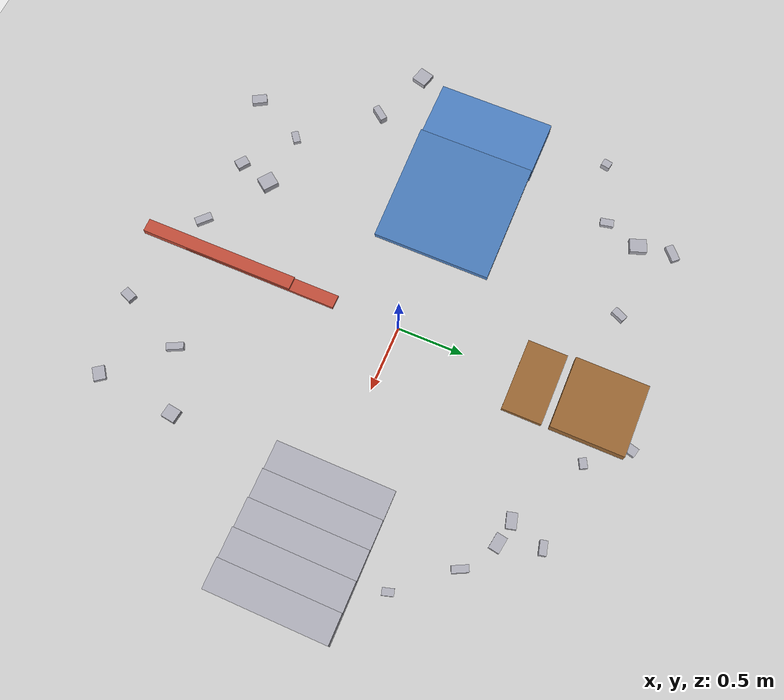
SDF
<?xml version="1.0" ?>
<sdf version="1.6">
  <world name="default">
    <physics type="ode">
      <max_step_size>0.002</max_step_size>
      <real_time_update_rate>500</real_time_update_rate>
    </physics>
    <include>
      <uri>model://sun</uri>
    </include>
    <include>
      <uri>model://ground_plane</uri>
    </include>
    <!-- publish /gazebo/model_states so the robot base pose can be measured -->
    <plugin name="gazebo_ros_state" filename="libgazebo_ros_state.so">
      <ros>
        <namespace>/</namespace>
      </ros>
      <update_rate>50.0</update_rate>
    </plugin>

    <model name="stair_0">
      <static>true</static>
      <link name="link">
        <collision name="collision">
          <geometry><box><size>0.22 0.9 0.035</size></box></geometry>
        </collision>
        <visual name="visual">
          <geometry><box><size>0.22 0.9 0.035</size></box></geometry>
          <material><ambient>0.55 0.55 0.58 1</ambient><diffuse>0.68 0.68 0.72 1</diffuse></material>
        </visual>
      </link>
      <pose>1.2100 0.0000 0.0175 0.0000 0.0000 0.0000</pose>
    </model>
    <model name="stair_1">
      <static>true</static>
      <link name="link">
        <collision name="collision">
          <geometry><box><size>0.22 0.9 0.07</size></box></geometry>
        </collision>
        <visual name="visual">
          <geometry><box><size>0.22 0.9 0.07</size></box></geometry>
          <material><ambient>0.55 0.55 0.58 1</ambient><diffuse>0.68 0.68 0.72 1</diffuse></material>
        </visual>
      </link>
      <pose>1.4300 0.0000 0.0350 0.0000 0.0000 0.0000</pose>
    </model>
    <model name="stair_2">
      <static>true</static>
      <link name="link">
        <collision name="collision">
          <geometry><box><size>0.22 0.9 0.10500000000000001</size></box></geometry>
        </collision>
        <visual name="visual">
          <geometry><box><size>0.22 0.9 0.10500000000000001</size></box></geometry>
          <material><ambient>0.55 0.55 0.58 1</ambient><diffuse>0.68 0.68 0.72 1</diffuse></material>
        </visual>
      </link>
      <pose>1.6500 0.0000 0.0525 0.0000 0.0000 0.0000</pose>
    </model>
    <model name="stair_3">
      <static>true</static>
      <link name="link">
        <collision name="collision">
          <geometry><box><size>0.22 0.9 0.14</size></box></geometry>
        </collision>
        <visual name="visual">
          <geometry><box><size>0.22 0.9 0.14</size></box></geometry>
          <material><ambient>0.55 0.55 0.58 1</ambient><diffuse>0.68 0.68 0.72 1</diffuse></material>
        </visual>
      </link>
      <pose>1.8700 0.0000 0.0700 0.0000 0.0000 0.0000</pose>
    </model>
    <model name="stair_4">
      <static>true</static>
      <link name="link">
        <collision name="collision">
          <geometry><box><size>0.22 0.9 0.17500000000000002</size></box></geometry>
        </collision>
        <visual name="visual">
          <geometry><box><size>0.22 0.9 0.17500000000000002</size></box></geometry>
          <material><ambient>0.55 0.55 0.58 1</ambient><diffuse>0.68 0.68 0.72 1</diffuse></material>
        </visual>
      </link>
      <pose>2.0900 0.0000 0.0875 0.0000 0.0000 0.0000</pose>
    </model>
    <model name="ramp">
      <static>true</static>
      <link name="link">
        <collision name="collision">
          <geometry><box><size>0.9 0.9 0.06</size></box></geometry>
        </collision>
        <visual name="visual">
          <geometry><box><size>0.9 0.9 0.06</size></box></geometry>
          <material><ambient>0.20 0.35 0.55 1</ambient><diffuse>0.30 0.50 0.75 1</diffuse></material>
        </visual>
      </link>
      <pose>-1.0500 0.0000 0.0892 0.0000 0.1326 0.0000</pose>
    </model>
    <model name="ramp_top">
      <static>true</static>
      <link name="link">
        <collision name="collision">
          <geometry><box><size>0.45 0.9 0.12</size></box></geometry>
        </collision>
        <visual name="visual">
          <geometry><box><size>0.45 0.9 0.12</size></box></geometry>
          <material><ambient>0.20 0.35 0.55 1</ambient><diffuse>0.30 0.50 0.75 1</diffuse></material>
        </visual>
      </link>
      <pose>-1.7250 0.0000 0.0600 0.0000 0.0000 0.0000</pose>
    </model>
    <model name="platform_lo">
      <static>true</static>
      <link name="link">
        <collision name="collision">
          <geometry><box><size>0.55 0.3 0.04</size></box></geometry>
        </collision>
        <visual name="visual">
          <geometry><box><size>0.55 0.3 0.04</size></box></geometry>
          <material><ambient>0.45 0.30 0.15 1</ambient><diffuse>0.60 0.40 0.20 1</diffuse></material>
        </visual>
      </link>
      <pose>0.0000 1.0500 0.0200 0.0000 0.0000 0.0000</pose>
    </model>
    <model name="platform_hi">
      <static>true</static>
      <link name="link">
        <collision name="collision">
          <geometry><box><size>0.55 0.55 0.08</size></box></geometry>
        </collision>
        <visual name="visual">
          <geometry><box><size>0.55 0.55 0.08</size></box></geometry>
          <material><ambient>0.45 0.30 0.15 1</ambient><diffuse>0.60 0.40 0.20 1</diffuse></material>
        </visual>
      </link>
      <pose>0.0000 1.5300 0.0400 0.0000 0.0000 0.0000</pose>
    </model>
    <model name="beam">
      <static>true</static>
      <link name="link">
        <collision name="collision">
          <geometry><box><size>0.1 1.2 0.03</size></box></geometry>
        </collision>
        <visual name="visual">
          <geometry><box><size>0.1 1.2 0.03</size></box></geometry>
          <material><ambient>0.55 0.20 0.15 1</ambient><diffuse>0.75 0.30 0.22 1</diffuse></material>
        </visual>
      </link>
      <pose>0.0000 -1.1000 0.0150 0.0000 0.0000 0.0000</pose>
    </model>
    <model name="beam2">
      <static>true</static>
      <link name="link">
        <collision name="collision">
          <geometry><box><size>0.1 1.2 0.055</size></box></geometry>
        </collision>
        <visual name="visual">
          <geometry><box><size>0.1 1.2 0.055</size></box></geometry>
          <material><ambient>0.55 0.20 0.15 1</ambient><diffuse>0.75 0.30 0.22 1</diffuse></material>
        </visual>
      </link>
      <pose>0.0000 -1.4500 0.0275 0.0000 0.0000 0.0000</pose>
    </model>
    <model name="rubble_0">
      <static>true</static>
      <link name="link">
        <collision name="collision">
          <geometry><box><size>0.10207475784318831 0.055794902933403424 0.04607646012920068</size></box></geometry>
        </collision>
        <visual name="visual">
          <geometry><box><size>0.10207475784318831 0.055794902933403424 0.04607646012920068</size></box></geometry>
          <material><ambient>0.55 0.55 0.58 1</ambient><diffuse>0.68 0.68 0.72 1</diffuse></material>
        </visual>
      </link>
      <pose>-0.7184 1.4359 0.0230 0.0000 0.0000 1.1488</pose>
    </model>
    <model name="rubble_1">
      <static>true</static>
      <link name="link">
        <collision name="collision">
          <geometry><box><size>0.05299965267535879 0.08469165469299086 0.03209566270723857</size></box></geometry>
        </collision>
        <visual name="visual">
          <geometry><box><size>0.05299965267535879 0.08469165469299086 0.03209566270723857</size></box></geometry>
          <material><ambient>0.55 0.55 0.58 1</ambient><diffuse>0.68 0.68 0.72 1</diffuse></material>
        </visual>
      </link>
      <pose>1.7334 0.6612 0.0160 0.0000 0.0000 0.2850</pose>
    </model>
    <model name="rubble_2">
      <static>true</static>
      <link name="link">
        <collision name="collision">
          <geometry><box><size>0.05990415689197165 0.06785911716856116 0.048822996672167676</size></box></geometry>
        </collision>
        <visual name="visual">
          <geometry><box><size>0.05990415689197165 0.06785911716856116 0.048822996672167676</size></box></geometry>
          <material><ambient>0.55 0.55 0.58 1</ambient><diffuse>0.68 0.68 0.72 1</diffuse></material>
        </visual>
      </link>
      <pose>-1.8494 0.9493 0.0244 0.0000 0.0000 2.9773</pose>
    </model>
    <model name="rubble_3">
      <static>true</static>
      <link name="link">
        <collision name="collision">
          <geometry><box><size>0.1281004084474336 0.05372661444942051 0.05575405377146038</size></box></geometry>
        </collision>
        <visual name="visual">
          <geometry><box><size>0.1281004084474336 0.05372661444942051 0.05575405377146038</size></box></geometry>
          <material><ambient>0.55 0.55 0.58 1</ambient><diffuse>0.68 0.68 0.72 1</diffuse></material>
        </visual>
      </link>
      <pose>-1.5731 -0.8279 0.0279 0.0000 0.0000 0.9098</pose>
    </model>
    <model name="rubble_4">
      <static>true</static>
      <link name="link">
        <collision name="collision">
          <geometry><box><size>0.07467854592815476 0.11529010872960252 0.03542179139771812</size></box></geometry>
        </collision>
        <visual name="visual">
          <geometry><box><size>0.07467854592815476 0.11529010872960252 0.03542179139771812</size></box></geometry>
          <material><ambient>0.55 0.55 0.58 1</ambient><diffuse>0.68 0.68 0.72 1</diffuse></material>
        </visual>
      </link>
      <pose>0.9757 1.2458 0.0177 0.0000 0.0000 1.8272</pose>
    </model>
    <model name="rubble_5">
      <static>true</static>
      <link name="link">
        <collision name="collision">
          <geometry><box><size>0.09381955725676464 0.055023117997865856 0.03178803509898698</size></box></geometry>
        </collision>
        <visual name="visual">
          <geometry><box><size>0.09381955725676464 0.055023117997865856 0.03178803509898698</size></box></geometry>
          <material><ambient>0.55 0.55 0.58 1</ambient><diffuse>0.68 0.68 0.72 1</diffuse></material>
        </visual>
      </link>
      <pose>-1.1315 -1.3489 0.0159 0.0000 0.0000 0.6470</pose>
    </model>
    <model name="rubble_6">
      <static>true</static>
      <link name="link">
        <collision name="collision">
          <geometry><box><size>0.07513177363014333 0.0968449490806111 0.04359553129112326</size></box></geometry>
        </collision>
        <visual name="visual">
          <geometry><box><size>0.07513177363014333 0.0968449490806111 0.04359553129112326</size></box></geometry>
          <material><ambient>0.55 0.55 0.58 1</ambient><diffuse>0.68 0.68 0.72 1</diffuse></material>
        </visual>
      </link>
      <pose>-0.7620 -1.6300 0.0218 0.0000 0.0000 0.9417</pose>
    </model>
    <model name="rubble_7">
      <static>true</static>
      <link name="link">
        <collision name="collision">
          <geometry><box><size>0.06952772085777223 0.09595389682069369 0.04575589511434354</size></box></geometry>
        </collision>
        <visual name="visual">
          <geometry><box><size>0.06952772085777223 0.09595389682069369 0.04575589511434354</size></box></geometry>
          <material><ambient>0.55 0.55 0.58 1</ambient><diffuse>0.68 0.68 0.72 1</diffuse></material>
        </visual>
      </link>
      <pose>0.5475 -1.9125 0.0229 0.0000 0.0000 2.7493</pose>
    </model>
    <model name="rubble_8">
      <static>true</static>
      <link name="link">
        <collision name="collision">
          <geometry><box><size>0.12841398779940658 0.059445262260396974 0.04254368465355682</size></box></geometry>
        </collision>
        <visual name="visual">
          <geometry><box><size>0.12841398779940658 0.059445262260396974 0.04254368465355682</size></box></geometry>
          <material><ambient>0.55 0.55 0.58 1</ambient><diffuse>0.68 0.68 0.72 1</diffuse></material>
        </visual>
      </link>
      <pose>-0.2191 -1.6874 0.0213 0.0000 0.0000 2.3786</pose>
    </model>
    <model name="rubble_9">
      <static>true</static>
      <link name="link">
        <collision name="collision">
          <geometry><box><size>0.05313658056379501 0.10345726852275161 0.05293712598638439</size></box></geometry>
        </collision>
        <visual name="visual">
          <geometry><box><size>0.05313658056379501 0.10345726852275161 0.05293712598638439</size></box></geometry>
          <material><ambient>0.55 0.55 0.58 1</ambient><diffuse>0.68 0.68 0.72 1</diffuse></material>
        </visual>
      </link>
      <pose>1.0642 1.5038 0.0265 0.0000 0.0000 1.8002</pose>
    </model>
    <model name="rubble_10">
      <static>true</static>
      <link name="link">
        <collision name="collision">
          <geometry><box><size>0.10562362930189274 0.09754959016840148 0.04739685612847476</size></box></geometry>
        </collision>
        <visual name="visual">
          <geometry><box><size>0.10562362930189274 0.09754959016840148 0.04739685612847476</size></box></geometry>
          <material><ambient>0.55 0.55 0.58 1</ambient><diffuse>0.68 0.68 0.72 1</diffuse></material>
        </visual>
      </link>
      <pose>1.2196 -1.2123 0.0237 0.0000 0.0000 1.4332</pose>
    </model>
    <model name="rubble_11">
      <static>true</static>
      <link name="link">
        <collision name="collision">
          <geometry><box><size>0.08792786699357155 0.10313217643797395 0.03182008282791659</size></box></geometry>
        </collision>
        <visual name="visual">
          <geometry><box><size>0.08792786699357155 0.10313217643797395 0.03182008282791659</size></box></geometry>
          <material><ambient>0.55 0.55 0.58 1</ambient><diffuse>0.68 0.68 0.72 1</diffuse></material>
        </visual>
      </link>
      <pose>1.1577 -1.8251 0.0159 0.0000 0.0000 2.2038</pose>
    </model>
    <model name="rubble_12">
      <static>true</static>
      <link name="link">
        <collision name="collision">
          <geometry><box><size>0.1157539829287772 0.07276764256753195 0.041573743273401326</size></box></geometry>
        </collision>
        <visual name="visual">
          <geometry><box><size>0.1157539829287772 0.07276764256753195 0.041573743273401326</size></box></geometry>
          <material><ambient>0.55 0.55 0.58 1</ambient><diffuse>0.68 0.68 0.72 1</diffuse></material>
        </visual>
      </link>
      <pose>-1.3221 -1.7524 0.0208 0.0000 0.0000 2.1006</pose>
    </model>
    <model name="rubble_13">
      <static>true</static>
      <link name="link">
        <collision name="collision">
          <geometry><box><size>0.06344387031252356 0.05936766355853856 0.03176863257993931</size></box></geometry>
        </collision>
        <visual name="visual">
          <geometry><box><size>0.06344387031252356 0.05936766355853856 0.03176863257993931</size></box></geometry>
          <material><ambient>0.55 0.55 0.58 1</ambient><diffuse>0.68 0.68 0.72 1</diffuse></material>
        </visual>
      </link>
      <pose>1.8049 0.2576 0.0159 0.0000 0.0000 2.4135</pose>
    </model>
    <model name="rubble_14">
      <static>true</static>
      <link name="link">
        <collision name="collision">
          <geometry><box><size>0.08127597625065816 0.11971375793010396 0.03241743903600416</size></box></geometry>
        </collision>
        <visual name="visual">
          <geometry><box><size>0.08127597625065816 0.11971375793010396 0.03241743903600416</size></box></geometry>
          <material><ambient>0.55 0.55 0.58 1</ambient><diffuse>0.68 0.68 0.72 1</diffuse></material>
        </visual>
      </link>
      <pose>1.1505 1.2150 0.0162 0.0000 0.0000 1.4112</pose>
    </model>
    <model name="rubble_15">
      <static>true</static>
      <link name="link">
        <collision name="collision">
          <geometry><box><size>0.1155423870268593 0.11911875757588122 0.03835263193541691</size></box></geometry>
        </collision>
        <visual name="visual">
          <geometry><box><size>0.1155423870268593 0.11911875757588122 0.03835263193541691</size></box></geometry>
          <material><ambient>0.55 0.55 0.58 1</ambient><diffuse>0.68 0.68 0.72 1</diffuse></material>
        </visual>
      </link>
      <pose>-2.0170 -0.6475 0.0192 0.0000 0.0000 1.3047</pose>
    </model>
    <model name="rubble_16">
      <static>true</static>
      <link name="link">
        <collision name="collision">
          <geometry><box><size>0.1266184963171193 0.06207367246328872 0.03528653185471111</size></box></geometry>
        </collision>
        <visual name="visual">
          <geometry><box><size>0.1266184963171193 0.06207367246328872 0.03528653185471111</size></box></geometry>
          <material><ambient>0.55 0.55 0.58 1</ambient><diffuse>0.68 0.68 0.72 1</diffuse></material>
        </visual>
      </link>
      <pose>-1.3380 1.6430 0.0176 0.0000 0.0000 0.7287</pose>
    </model>
    <model name="rubble_17">
      <static>true</static>
      <link name="link">
        <collision name="collision">
          <geometry><box><size>0.09712988029858045 0.07101972954388304 0.030122808101551917</size></box></geometry>
        </collision>
        <visual name="visual">
          <geometry><box><size>0.09712988029858045 0.07101972954388304 0.030122808101551917</size></box></geometry>
          <material><ambient>0.55 0.55 0.58 1</ambient><diffuse>0.68 0.68 0.72 1</diffuse></material>
        </visual>
      </link>
      <pose>0.1922 1.8294 0.0151 0.0000 0.0000 1.3162</pose>
    </model>
    <model name="rubble_18">
      <static>true</static>
      <link name="link">
        <collision name="collision">
          <geometry><box><size>0.12624783404200762 0.10523949257087824 0.04546474299212335</size></box></geometry>
        </collision>
        <visual name="visual">
          <geometry><box><size>0.12624783404200762 0.10523949257087824 0.04546474299212335</size></box></geometry>
          <material><ambient>0.55 0.55 0.58 1</ambient><diffuse>0.68 0.68 0.72 1</diffuse></material>
        </visual>
      </link>
      <pose>-1.2917 1.3885 0.0227 0.0000 0.0000 1.9402</pose>
    </model>
    <model name="rubble_19">
      <static>true</static>
      <link name="link">
        <collision name="collision">
          <geometry><box><size>0.12196264080463617 0.11239755925648583 0.056235395524034296</size></box></geometry>
        </collision>
        <visual name="visual">
          <geometry><box><size>0.12196264080463617 0.11239755925648583 0.056235395524034296</size></box></geometry>
          <material><ambient>0.55 0.55 0.58 1</ambient><diffuse>0.68 0.68 0.72 1</diffuse></material>
        </visual>
      </link>
      <pose>-0.6878 -1.3754 0.0281 0.0000 0.0000 2.5066</pose>
    </model>
    <model name="rubble_20">
      <static>true</static>
      <link name="link">
        <collision name="collision">
          <geometry><box><size>0.058282967496825946 0.10074316525485673 0.03186743464856063</size></box></geometry>
        </collision>
        <visual name="visual">
          <geometry><box><size>0.058282967496825946 0.10074316525485673 0.03186743464856063</size></box></geometry>
          <material><ambient>0.55 0.55 0.58 1</ambient><diffuse>0.68 0.68 0.72 1</diffuse></material>
        </visual>
      </link>
      <pose>-1.3878 1.1135 0.0159 0.0000 0.0000 0.2116</pose>
    </model>
    <model name="rubble_21">
      <static>true</static>
      <link name="link">
        <collision name="collision">
          <geometry><box><size>0.07720429217858747 0.05420604831122136 0.030006998457040697</size></box></geometry>
        </collision>
        <visual name="visual">
          <geometry><box><size>0.07720429217858747 0.05420604831122136 0.030006998457040697</size></box></geometry>
          <material><ambient>0.55 0.55 0.58 1</ambient><diffuse>0.68 0.68 0.72 1</diffuse></material>
        </visual>
      </link>
      <pose>0.4134 1.5598 0.0150 0.0000 0.0000 0.4752</pose>
    </model>
    <model name="rubble_22">
      <static>true</static>
      <link name="link">
        <collision name="collision">
          <geometry><box><size>0.05204007093329166 0.11994659018990557 0.04842206963365436</size></box></geometry>
        </collision>
        <visual name="visual">
          <geometry><box><size>0.05204007093329166 0.11994659018990557 0.04842206963365436</size></box></geometry>
          <material><ambient>0.55 0.55 0.58 1</ambient><diffuse>0.68 0.68 0.72 1</diffuse></material>
        </visual>
      </link>
      <pose>1.4099 1.0443 0.0242 0.0000 0.0000 0.4667</pose>
    </model>
    <model name="rubble_23">
      <static>true</static>
      <link name="link">
        <collision name="collision">
          <geometry><box><size>0.0791330751622626 0.0598273784609756 0.055468107794538445</size></box></geometry>
        </collision>
        <visual name="visual">
          <geometry><box><size>0.0791330751622626 0.0598273784609756 0.055468107794538445</size></box></geometry>
          <material><ambient>0.55 0.55 0.58 1</ambient><diffuse>0.68 0.68 0.72 1</diffuse></material>
        </visual>
      </link>
      <pose>-0.0247 1.7430 0.0277 0.0000 0.0000 3.1199</pose>
    </model>
    <model name="rubble_24">
      <static>true</static>
      <link name="link">
        <collision name="collision">
          <geometry><box><size>0.05687077292449325 0.05817500933985348 0.04027907514729005</size></box></geometry>
        </collision>
        <visual name="visual">
          <geometry><box><size>0.05687077292449325 0.05817500933985348 0.04027907514729005</size></box></geometry>
          <material><ambient>0.55 0.55 0.58 1</ambient><diffuse>0.68 0.68 0.72 1</diffuse></material>
        </visual>
      </link>
      <pose>-1.7969 0.3899 0.0201 0.0000 0.0000 0.8318</pose>
    </model>
    <model name="rubble_25">
      <static>true</static>
      <link name="link">
        <collision name="collision">
          <geometry><box><size>0.051847657683619854 0.12607884582997617 0.04584772185126374</size></box></geometry>
        </collision>
        <visual name="visual">
          <geometry><box><size>0.051847657683619854 0.12607884582997617 0.04584772185126374</size></box></geometry>
          <material><ambient>0.55 0.55 0.58 1</ambient><diffuse>0.68 0.68 0.72 1</diffuse></material>
        </visual>
      </link>
      <pose>0.7669 -1.4190 0.0229 0.0000 0.0000 0.4606</pose>
    </model>
  </world>
</sdf>
